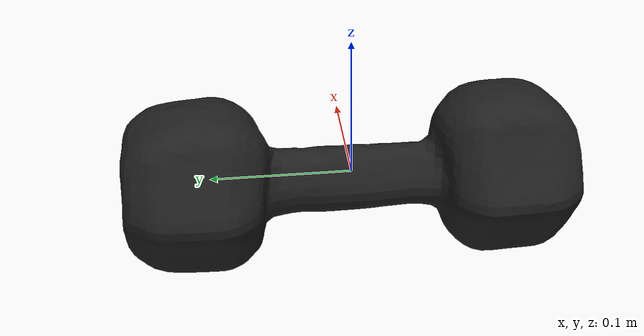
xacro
<?xml version="1.0"?>
<robot name="weight20_model"
       xmlns:xi="http://www.w3.org/2001/XInclude"
       xmlns:gazebo="http://playerstage.sourceforge.net/gazebo/xmlschema/#gz"
       xmlns:model="http://playerstage.sourceforge.net/gazebo/xmlschema/#model"
       xmlns:sensor="http://playerstage.sourceforge.net/gazebo/xmlschema/#sensor"
       xmlns:body="http://playerstage.sourceforge.net/gazebo/xmlschema/#body"
       xmlns:geom="http://playerstage.sourceforge.net/gazebo/xmlschema/#geom"
       xmlns:joint="http://playerstage.sourceforge.net/gazebo/xmlschema/#joint"
       xmlns:interface="http://playerstage.sourceforge.net/gazebo/xmlschema/#interface"
       xmlns:rendering="http://playerstage.sourceforge.net/gazebo/xmlschema/#rendering"
       xmlns:renderable="http://playerstage.sourceforge.net/gazebo/xmlschema/#renderable"
       xmlns:controller="http://playerstage.sourceforge.net/gazebo/xmlschema/#controller"
       xmlns:physics="http://playerstage.sourceforge.net/gazebo/xmlschema/#physics">

  <link name="weight20">
    <inertial>
      <mass value="9.01" />
      <origin xyz="0 0.04 0" />
      <inertia  ixx="1" ixy="0.0"  ixz="0.0"  iyy="1"  iyz="0.0"  izz="1" />
    </inertial>
    <visual>
      <origin xyz="0 0 0" rpy="1.57 0 1.57" />
      <geometry>
        <mesh filename="package://r2_gazebo/Media/models/objects/weight20.dae" />
      </geometry>
    </visual>
    <collision>
      <origin xyz="0 0 0" rpy="1.57 0 1.57" />
      <geometry>
        <mesh filename="package://r2_gazebo/Media/models/objects/weight20.dae" />
      </geometry>
    </collision>
  </link>

  <gazebo reference="weight20">
    <material>Gazebo/Black</material>
    <turnGravityOff>false</turnGravityOff>
 </gazebo>
</robot>
